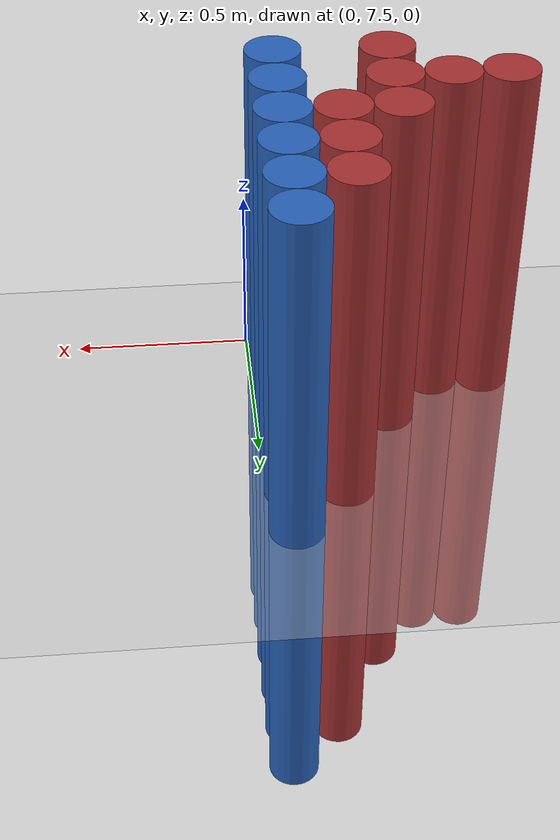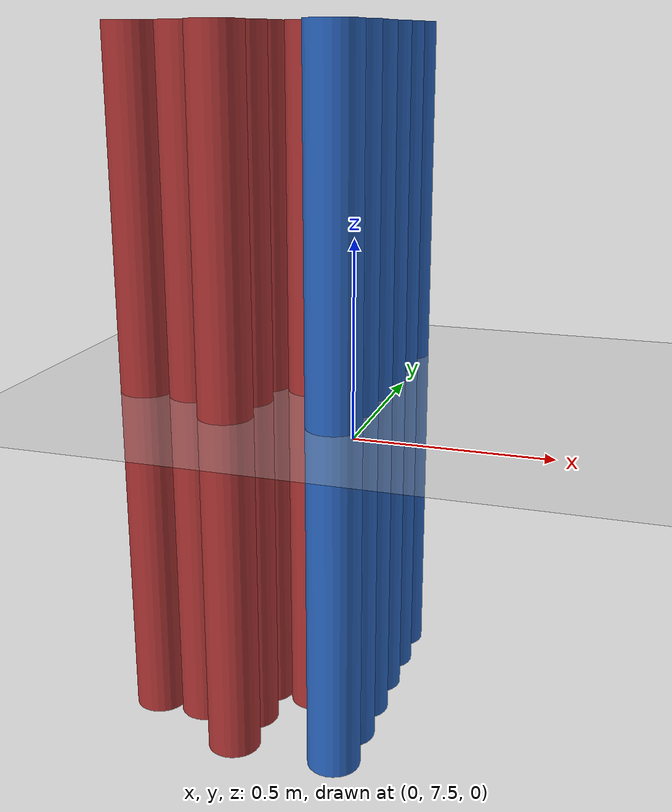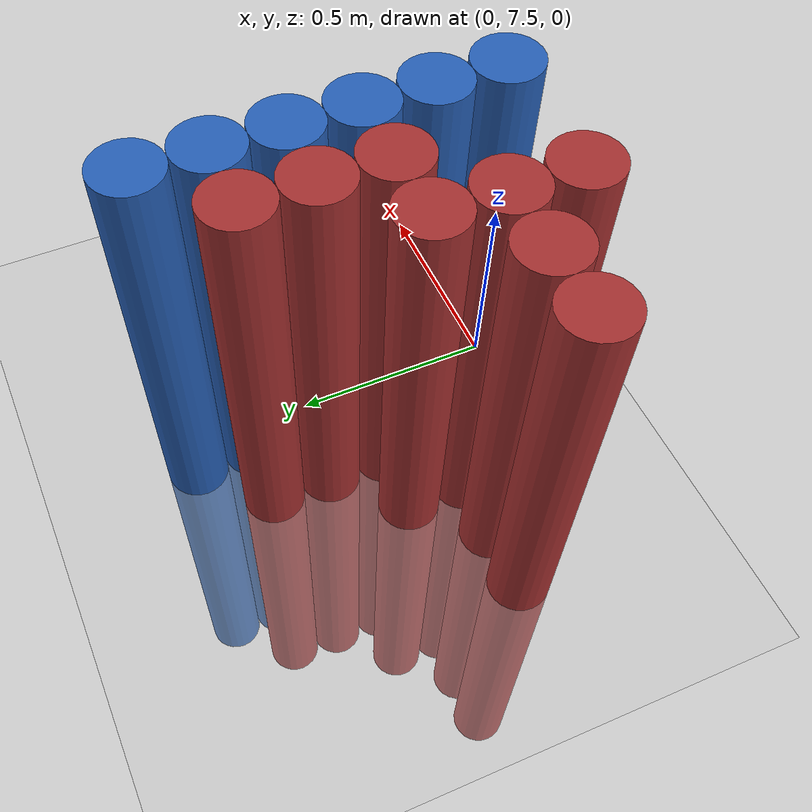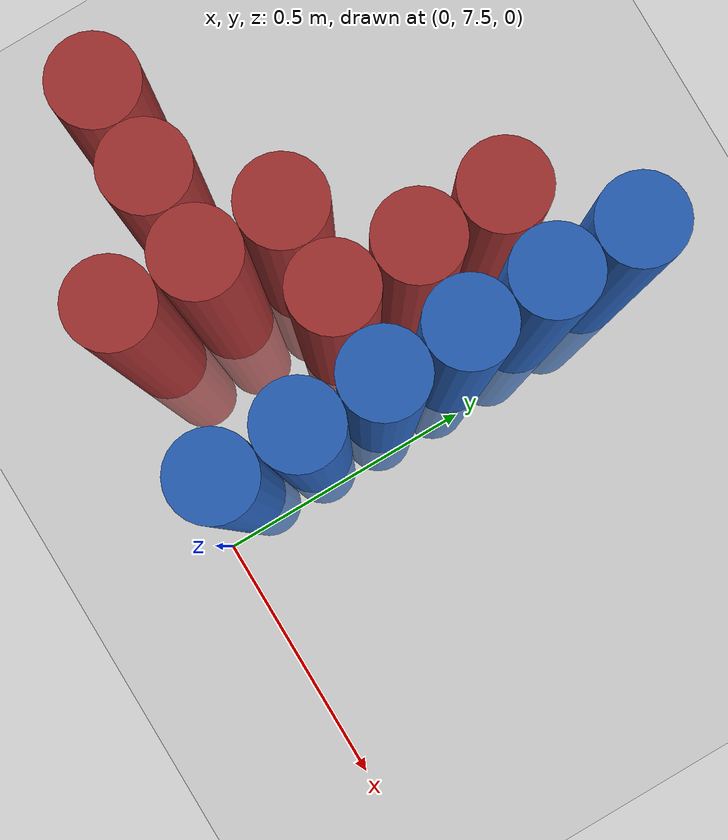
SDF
<sdf version="1.6">
 <world name="default">
  <model name="ground_plane">
   <static>1</static>
   <link name="link">
    <collision name="collision">
     <geometry><plane><normal>0 0 1</normal><size>100 100</size></plane></geometry>
     <surface><friction><ode><mu>100</mu><mu2>50</mu2></ode></friction></surface>
    </collision>
    <visual name="visual">
     <cast_shadows>0</cast_shadows>
     <geometry><plane><normal>0 0 1</normal><size>100 100</size></plane></geometry>
     <material>
      <script><uri>file://media/materials/scripts/gazebo.material</uri><name>Gazebo/Grey</name></script>
     </material>
    </visual>
   </link>
  </model>
  <model name="unit_cylinder_161">
   <static>1</static>
   <pose>-0.675000 7.725000 0.000000 0.000000 0.000000 0.000000</pose>
   <link name="link">
    <inertial>
     <mass>1</mass>
     <inertia><ixx>0.145833</ixx><ixy>0</ixy><ixz>0</ixz><iyy>0.145833</iyy><iyz>0</iyz><izz>0.125</izz></inertia>
    </inertial>
    <collision name="collision">
     <geometry><cylinder><radius>0.075000</radius><length>2</length></cylinder></geometry>
    </collision>
    <visual name="visual">
     <geometry><cylinder><radius>0.075000</radius><length>2</length></cylinder></geometry>
     <material>
      <ambient>0.648000 0.192000 0.192000 1</ambient>
      <diffuse>0.648000 0.192000 0.192000 1</diffuse>
     </material>
     <material>
      <script><name>Gazebo/Grey</name><uri>file://media/materials/scripts/gazebo.material</uri></script>
     </material>
    </visual>
   </link>
  </model>
  <model name="unit_cylinder_167">
   <static>1</static>
   <pose>-0.525000 7.725000 0.000000 0.000000 0.000000 0.000000</pose>
   <link name="link">
    <inertial>
     <mass>1</mass>
     <inertia><ixx>0.145833</ixx><ixy>0</ixy><ixz>0</ixz><iyy>0.145833</iyy><iyz>0</iyz><izz>0.125</izz></inertia>
    </inertial>
    <collision name="collision">
     <geometry><cylinder><radius>0.075000</radius><length>2</length></cylinder></geometry>
    </collision>
    <visual name="visual">
     <geometry><cylinder><radius>0.075000</radius><length>2</length></cylinder></geometry>
     <material>
      <ambient>0.648000 0.192000 0.192000 1</ambient>
      <diffuse>0.648000 0.192000 0.192000 1</diffuse>
     </material>
     <material>
      <script><name>Gazebo/Grey</name><uri>file://media/materials/scripts/gazebo.material</uri></script>
     </material>
    </visual>
   </link>
  </model>
  <model name="unit_cylinder_175">
   <static>1</static>
   <pose>-0.375000 7.575000 0.000000 0.000000 0.000000 0.000000</pose>
   <link name="link">
    <inertial>
     <mass>1</mass>
     <inertia><ixx>0.145833</ixx><ixy>0</ixy><ixz>0</ixz><iyy>0.145833</iyy><iyz>0</iyz><izz>0.125</izz></inertia>
    </inertial>
    <collision name="collision">
     <geometry><cylinder><radius>0.075000</radius><length>2</length></cylinder></geometry>
    </collision>
    <visual name="visual">
     <geometry><cylinder><radius>0.075000</radius><length>2</length></cylinder></geometry>
     <material>
      <ambient>0.648000 0.192000 0.192000 1</ambient>
      <diffuse>0.648000 0.192000 0.192000 1</diffuse>
     </material>
     <material>
      <script><name>Gazebo/Grey</name><uri>file://media/materials/scripts/gazebo.material</uri></script>
     </material>
    </visual>
   </link>
  </model>
  <model name="unit_cylinder_176">
   <static>1</static>
   <pose>-0.375000 7.725000 0.000000 0.000000 0.000000 0.000000</pose>
   <link name="link">
    <inertial>
     <mass>1</mass>
     <inertia><ixx>0.145833</ixx><ixy>0</ixy><ixz>0</ixz><iyy>0.145833</iyy><iyz>0</iyz><izz>0.125</izz></inertia>
    </inertial>
    <collision name="collision">
     <geometry><cylinder><radius>0.075000</radius><length>2</length></cylinder></geometry>
    </collision>
    <visual name="visual">
     <geometry><cylinder><radius>0.075000</radius><length>2</length></cylinder></geometry>
     <material>
      <ambient>0.648000 0.192000 0.192000 1</ambient>
      <diffuse>0.648000 0.192000 0.192000 1</diffuse>
     </material>
     <material>
      <script><name>Gazebo/Grey</name><uri>file://media/materials/scripts/gazebo.material</uri></script>
     </material>
    </visual>
   </link>
  </model>
  <model name="unit_cylinder_177">
   <static>1</static>
   <pose>-0.375000 7.875000 0.000000 0.000000 0.000000 0.000000</pose>
   <link name="link">
    <inertial>
     <mass>1</mass>
     <inertia><ixx>0.145833</ixx><ixy>0</ixy><ixz>0</ixz><iyy>0.145833</iyy><iyz>0</iyz><izz>0.125</izz></inertia>
    </inertial>
    <collision name="collision">
     <geometry><cylinder><radius>0.075000</radius><length>2</length></cylinder></geometry>
    </collision>
    <visual name="visual">
     <geometry><cylinder><radius>0.075000</radius><length>2</length></cylinder></geometry>
     <material>
      <ambient>0.648000 0.192000 0.192000 1</ambient>
      <diffuse>0.648000 0.192000 0.192000 1</diffuse>
     </material>
     <material>
      <script><name>Gazebo/Grey</name><uri>file://media/materials/scripts/gazebo.material</uri></script>
     </material>
    </visual>
   </link>
  </model>
  <model name="unit_cylinder_188">
   <static>1</static>
   <pose>-0.225000 7.875000 0.000000 0.000000 0.000000 0.000000</pose>
   <link name="link">
    <inertial>
     <mass>1</mass>
     <inertia><ixx>0.145833</ixx><ixy>0</ixy><ixz>0</ixz><iyy>0.145833</iyy><iyz>0</iyz><izz>0.125</izz></inertia>
    </inertial>
    <collision name="collision">
     <geometry><cylinder><radius>0.075000</radius><length>2</length></cylinder></geometry>
    </collision>
    <visual name="visual">
     <geometry><cylinder><radius>0.075000</radius><length>2</length></cylinder></geometry>
     <material>
      <ambient>0.648000 0.192000 0.192000 1</ambient>
      <diffuse>0.648000 0.192000 0.192000 1</diffuse>
     </material>
     <material>
      <script><name>Gazebo/Grey</name><uri>file://media/materials/scripts/gazebo.material</uri></script>
     </material>
    </visual>
   </link>
  </model>
  <model name="unit_cylinder_189">
   <static>1</static>
   <pose>-0.225000 8.025000 0.000000 0.000000 0.000000 0.000000</pose>
   <link name="link">
    <inertial>
     <mass>1</mass>
     <inertia><ixx>0.145833</ixx><ixy>0</ixy><ixz>0</ixz><iyy>0.145833</iyy><iyz>0</iyz><izz>0.125</izz></inertia>
    </inertial>
    <collision name="collision">
     <geometry><cylinder><radius>0.075000</radius><length>2</length></cylinder></geometry>
    </collision>
    <visual name="visual">
     <geometry><cylinder><radius>0.075000</radius><length>2</length></cylinder></geometry>
     <material>
      <ambient>0.648000 0.192000 0.192000 1</ambient>
      <diffuse>0.648000 0.192000 0.192000 1</diffuse>
     </material>
     <material>
      <script><name>Gazebo/Grey</name><uri>file://media/materials/scripts/gazebo.material</uri></script>
     </material>
    </visual>
   </link>
  </model>
  <model name="unit_cylinder_190">
   <static>1</static>
   <pose>-0.225000 8.175000 0.000000 0.000000 0.000000 0.000000</pose>
   <link name="link">
    <inertial>
     <mass>1</mass>
     <inertia><ixx>0.145833</ixx><ixy>0</ixy><ixz>0</ixz><iyy>0.145833</iyy><iyz>0</iyz><izz>0.125</izz></inertia>
    </inertial>
    <collision name="collision">
     <geometry><cylinder><radius>0.075000</radius><length>2</length></cylinder></geometry>
    </collision>
    <visual name="visual">
     <geometry><cylinder><radius>0.075000</radius><length>2</length></cylinder></geometry>
     <material>
      <ambient>0.648000 0.192000 0.192000 1</ambient>
      <diffuse>0.648000 0.192000 0.192000 1</diffuse>
     </material>
     <material>
      <script><name>Gazebo/Grey</name><uri>file://media/materials/scripts/gazebo.material</uri></script>
     </material>
    </visual>
   </link>
  </model>
  <model name="unit_cylinder_208">
   <static>1</static>
   <pose>-0.075000 7.575000 0.000000 0.000000 0.000000 0.000000</pose>
   <link name="link">
    <inertial>
     <mass>1</mass>
     <inertia><ixx>0.145833</ixx><ixy>0</ixy><ixz>0</ixz><iyy>0.145833</iyy><iyz>0</iyz><izz>0.125</izz></inertia>
    </inertial>
    <collision name="collision">
     <geometry><cylinder><radius>0.075000</radius><length>2</length></cylinder></geometry>
    </collision>
    <visual name="visual">
     <geometry><cylinder><radius>0.075000</radius><length>2</length></cylinder></geometry>
     <material>
      <ambient>0.152000 0.379000 0.720000 1</ambient>
      <diffuse>0.152000 0.379000 0.720000 1</diffuse>
     </material>
     <material>
      <script><name>Gazebo/Grey</name><uri>file://media/materials/scripts/gazebo.material</uri></script>
     </material>
    </visual>
   </link>
  </model>
  <model name="unit_cylinder_209">
   <static>1</static>
   <pose>-0.075000 7.725000 0.000000 0.000000 0.000000 0.000000</pose>
   <link name="link">
    <inertial>
     <mass>1</mass>
     <inertia><ixx>0.145833</ixx><ixy>0</ixy><ixz>0</ixz><iyy>0.145833</iyy><iyz>0</iyz><izz>0.125</izz></inertia>
    </inertial>
    <collision name="collision">
     <geometry><cylinder><radius>0.075000</radius><length>2</length></cylinder></geometry>
    </collision>
    <visual name="visual">
     <geometry><cylinder><radius>0.075000</radius><length>2</length></cylinder></geometry>
     <material>
      <ambient>0.152000 0.379000 0.720000 1</ambient>
      <diffuse>0.152000 0.379000 0.720000 1</diffuse>
     </material>
     <material>
      <script><name>Gazebo/Grey</name><uri>file://media/materials/scripts/gazebo.material</uri></script>
     </material>
    </visual>
   </link>
  </model>
  <model name="unit_cylinder_210">
   <static>1</static>
   <pose>-0.075000 7.875000 0.000000 0.000000 0.000000 0.000000</pose>
   <link name="link">
    <inertial>
     <mass>1</mass>
     <inertia><ixx>0.145833</ixx><ixy>0</ixy><ixz>0</ixz><iyy>0.145833</iyy><iyz>0</iyz><izz>0.125</izz></inertia>
    </inertial>
    <collision name="collision">
     <geometry><cylinder><radius>0.075000</radius><length>2</length></cylinder></geometry>
    </collision>
    <visual name="visual">
     <geometry><cylinder><radius>0.075000</radius><length>2</length></cylinder></geometry>
     <material>
      <ambient>0.152000 0.379000 0.720000 1</ambient>
      <diffuse>0.152000 0.379000 0.720000 1</diffuse>
     </material>
     <material>
      <script><name>Gazebo/Grey</name><uri>file://media/materials/scripts/gazebo.material</uri></script>
     </material>
    </visual>
   </link>
  </model>
  <model name="unit_cylinder_211">
   <static>1</static>
   <pose>-0.075000 8.025000 0.000000 0.000000 0.000000 0.000000</pose>
   <link name="link">
    <inertial>
     <mass>1</mass>
     <inertia><ixx>0.145833</ixx><ixy>0</ixy><ixz>0</ixz><iyy>0.145833</iyy><iyz>0</iyz><izz>0.125</izz></inertia>
    </inertial>
    <collision name="collision">
     <geometry><cylinder><radius>0.075000</radius><length>2</length></cylinder></geometry>
    </collision>
    <visual name="visual">
     <geometry><cylinder><radius>0.075000</radius><length>2</length></cylinder></geometry>
     <material>
      <ambient>0.152000 0.379000 0.720000 1</ambient>
      <diffuse>0.152000 0.379000 0.720000 1</diffuse>
     </material>
     <material>
      <script><name>Gazebo/Grey</name><uri>file://media/materials/scripts/gazebo.material</uri></script>
     </material>
    </visual>
   </link>
  </model>
  <model name="unit_cylinder_212">
   <static>1</static>
   <pose>-0.075000 8.175000 0.000000 0.000000 0.000000 0.000000</pose>
   <link name="link">
    <inertial>
     <mass>1</mass>
     <inertia><ixx>0.145833</ixx><ixy>0</ixy><ixz>0</ixz><iyy>0.145833</iyy><iyz>0</iyz><izz>0.125</izz></inertia>
    </inertial>
    <collision name="collision">
     <geometry><cylinder><radius>0.075000</radius><length>2</length></cylinder></geometry>
    </collision>
    <visual name="visual">
     <geometry><cylinder><radius>0.075000</radius><length>2</length></cylinder></geometry>
     <material>
      <ambient>0.152000 0.379000 0.720000 1</ambient>
      <diffuse>0.152000 0.379000 0.720000 1</diffuse>
     </material>
     <material>
      <script><name>Gazebo/Grey</name><uri>file://media/materials/scripts/gazebo.material</uri></script>
     </material>
    </visual>
   </link>
  </model>
  <model name="unit_cylinder_213">
   <static>1</static>
   <pose>-0.075000 8.325000 0.000000 0.000000 0.000000 0.000000</pose>
   <link name="link">
    <inertial>
     <mass>1</mass>
     <inertia><ixx>0.145833</ixx><ixy>0</ixy><ixz>0</ixz><iyy>0.145833</iyy><iyz>0</iyz><izz>0.125</izz></inertia>
    </inertial>
    <collision name="collision">
     <geometry><cylinder><radius>0.075000</radius><length>2</length></cylinder></geometry>
    </collision>
    <visual name="visual">
     <geometry><cylinder><radius>0.075000</radius><length>2</length></cylinder></geometry>
     <material>
      <ambient>0.152000 0.379000 0.720000 1</ambient>
      <diffuse>0.152000 0.379000 0.720000 1</diffuse>
     </material>
     <material>
      <script><name>Gazebo/Grey</name><uri>file://media/materials/scripts/gazebo.material</uri></script>
     </material>
    </visual>
   </link>
  </model>
 </world>
</sdf>
